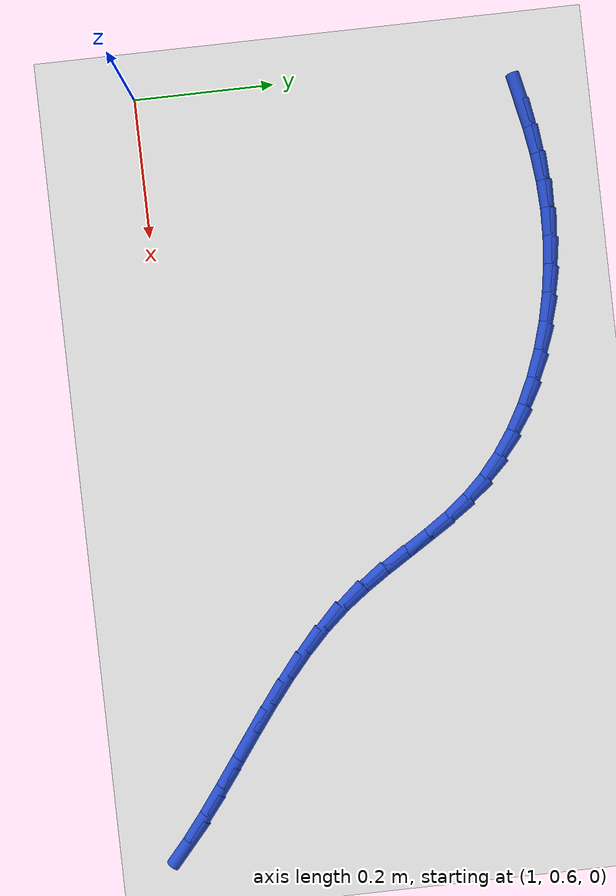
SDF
<sdf version="1.6">
 <world name="default">
  <model name="ground_plane">
   <static>1</static>
   <link name="link">
    <collision name="collision">
     <geometry><plane><normal>0 0 1</normal><size>100 100</size></plane></geometry>
     <surface><friction><ode><mu>100</mu><mu2>50</mu2></ode></friction></surface>
    </collision>
    <visual name="visual">
     <cast_shadows>0</cast_shadows>
     <geometry><plane><normal>0 0 1</normal><size>100 100</size></plane></geometry>
     <material>
      <script><uri>file://media/materials/scripts/gazebo.material</uri><name>Gazebo/WhiteGlow</name></script>
     </material>
    </visual>
   </link>
  </model>
  <model name="line">
   <link name="link_44">
    <pose>1.0646068850760408 1.150259368805527 0.01 0 1.57 0.20773346592808328</pose>
    <collision name="collision">
     <geometry><cylinder><radius>0.01</radius><length>0.08</length></cylinder></geometry>
    </collision>
    <visual name="visual">
     <material>
      <script><name>Gazebo/Blue</name><uri>file://media/materials/scripts/gazebo.material</uri></script>
     </material>
     <geometry><cylinder><radius>0.01</radius><length>0.08</length></cylinder></geometry>
    </visual>
   </link>
   <link name="link_45">
    <pose>1.1030458550985338 1.1583613074416304 0.01 0 1.57 0.16291315333399758</pose>
    <collision name="collision">
     <geometry><cylinder><radius>0.01</radius><length>0.08</length></cylinder></geometry>
    </collision>
    <visual name="visual">
     <material>
      <script><name>Gazebo/Blue</name><uri>file://media/materials/scripts/gazebo.material</uri></script>
     </material>
     <geometry><cylinder><radius>0.01</radius><length>0.08</length></cylinder></geometry>
    </visual>
   </link>
   <link name="link_46">
    <pose>1.1419332698020068 1.1647532277761146 0.01 0 1.57 0.10853883920037315</pose>
    <collision name="collision">
     <geometry><cylinder><radius>0.01</radius><length>0.08</length></cylinder></geometry>
    </collision>
    <visual name="visual">
     <material>
      <script><name>Gazebo/Blue</name><uri>file://media/materials/scripts/gazebo.material</uri></script>
     </material>
     <geometry><cylinder><radius>0.01</radius><length>0.08</length></cylinder></geometry>
    </visual>
   </link>
   <link name="link_47">
    <pose>1.1813703481232751 1.1690505709546015 0.01 0 1.57 0.04533581515027767</pose>
    <collision name="collision">
     <geometry><cylinder><radius>0.01</radius><length>0.08</length></cylinder></geometry>
    </collision>
    <visual name="visual">
     <material>
      <script><name>Gazebo/Blue</name><uri>file://media/materials/scripts/gazebo.material</uri></script>
     </material>
     <geometry><cylinder><radius>0.01</radius><length>0.08</length></cylinder></geometry>
    </visual>
   </link>
   <link name="link_48">
    <pose>1.2214577972305813 1.170869214282386 0.01 0 1.57 -0.022891678467195725</pose>
    <collision name="collision">
     <geometry><cylinder><radius>0.01</radius><length>0.08</length></cylinder></geometry>
    </collision>
    <visual name="visual">
     <material>
      <script><name>Gazebo/Blue</name><uri>file://media/materials/scripts/gazebo.material</uri></script>
     </material>
     <geometry><cylinder><radius>0.01</radius><length>0.08</length></cylinder></geometry>
    </visual>
   </link>
   <link name="link_49">
    <pose>1.262164713242165 1.1699372018434722 0.01 0 1.57 -0.08987571435881217</pose>
    <collision name="collision">
     <geometry><cylinder><radius>0.01</radius><length>0.08</length></cylinder></geometry>
    </collision>
    <visual name="visual">
     <material>
      <script><name>Gazebo/Blue</name><uri>file://media/materials/scripts/gazebo.material</uri></script>
     </material>
     <geometry><cylinder><radius>0.01</radius><length>0.08</length></cylinder></geometry>
    </visual>
   </link>
   <link name="link_50">
    <pose>1.3031542938465537 1.1662432825902787 0.01 0 1.57 -0.15596903619288768</pose>
    <collision name="collision">
     <geometry><cylinder><radius>0.01</radius><length>0.08</length></cylinder></geometry>
    </collision>
    <visual name="visual">
     <material>
      <script><name>Gazebo/Blue</name><uri>file://media/materials/scripts/gazebo.material</uri></script>
     </material>
     <geometry><cylinder><radius>0.01</radius><length>0.08</length></cylinder></geometry>
    </visual>
   </link>
   <link name="link_51">
    <pose>1.3440463779305294 1.1598131584295597 0.01 0 1.57 -0.22243005335612195</pose>
    <collision name="collision">
     <geometry><cylinder><radius>0.01</radius><length>0.08</length></cylinder></geometry>
    </collision>
    <visual name="visual">
     <material>
      <script><name>Gazebo/Blue</name><uri>file://media/materials/scripts/gazebo.material</uri></script>
     </material>
     <geometry><cylinder><radius>0.01</radius><length>0.08</length></cylinder></geometry>
    </visual>
   </link>
   <link name="link_52">
    <pose>1.3844608043808728 1.1506725312680683 0.01 0 1.57 -0.2904927583099985</pose>
    <collision name="collision">
     <geometry><cylinder><radius>0.01</radius><length>0.08</length></cylinder></geometry>
    </collision>
    <visual name="visual">
     <material>
      <script><name>Gazebo/Blue</name><uri>file://media/materials/scripts/gazebo.material</uri></script>
     </material>
     <geometry><cylinder><radius>0.01</radius><length>0.08</length></cylinder></geometry>
    </visual>
   </link>
   <link name="link_53">
    <pose>1.4240174120843647 1.1388471030125598 0.01 0 1.57 -0.36140017610113045</pose>
    <collision name="collision">
     <geometry><cylinder><radius>0.01</radius><length>0.08</length></cylinder></geometry>
    </collision>
    <visual name="visual">
     <material>
      <script><name>Gazebo/Blue</name><uri>file://media/materials/scripts/gazebo.material</uri></script>
     </material>
     <geometry><cylinder><radius>0.01</radius><length>0.08</length></cylinder></geometry>
    </visual>
   </link>
   <link name="link_54">
    <pose>1.4623360399277854 1.1243625755697872 0.01 0 1.57 -0.4364264576479031</pose>
    <collision name="collision">
     <geometry><cylinder><radius>0.01</radius><length>0.08</length></cylinder></geometry>
    </collision>
    <visual name="visual">
     <material>
      <script><name>Gazebo/Blue</name><uri>file://media/materials/scripts/gazebo.material</uri></script>
     </material>
     <geometry><cylinder><radius>0.01</radius><length>0.08</length></cylinder></geometry>
    </visual>
   </link>
   <link name="link_55">
    <pose>1.499036526797916 1.1072446508465044 0.01 0 1.57 -0.5168796228794665</pose>
    <collision name="collision">
     <geometry><cylinder><radius>0.01</radius><length>0.08</length></cylinder></geometry>
    </collision>
    <visual name="visual">
     <material>
      <script><name>Gazebo/Blue</name><uri>file://media/materials/scripts/gazebo.material</uri></script>
     </material>
     <geometry><cylinder><radius>0.01</radius><length>0.08</length></cylinder></geometry>
    </visual>
   </link>
   <link name="link_56">
    <pose>1.533738711581538 1.087519030749466 0.01 0 1.57 -0.604071956234662</pose>
    <collision name="collision">
     <geometry><cylinder><radius>0.01</radius><length>0.08</length></cylinder></geometry>
    </collision>
    <visual name="visual">
     <material>
      <script><name>Gazebo/Blue</name><uri>file://media/materials/scripts/gazebo.material</uri></script>
     </material>
     <geometry><cylinder><radius>0.01</radius><length>0.08</length></cylinder></geometry>
    </visual>
   </link>
   <link name="link_57">
    <pose>1.5660624331654307 1.0652114171854252 0.01 0 1.57 -0.6992390707674084</pose>
    <collision name="collision">
     <geometry><cylinder><radius>0.01</radius><length>0.08</length></cylinder></geometry>
    </collision>
    <visual name="visual">
     <material>
      <script><name>Gazebo/Blue</name><uri>file://media/materials/scripts/gazebo.material</uri></script>
     </material>
     <geometry><cylinder><radius>0.01</radius><length>0.08</length></cylinder></geometry>
    </visual>
   </link>
   <link name="link_58">
    <pose>1.5956275304363765 1.040347512061137 0.01 0 1.57 -0.8032128525421833</pose>
    <collision name="collision">
     <geometry><cylinder><radius>0.01</radius><length>0.08</length></cylinder></geometry>
    </collision>
    <visual name="visual">
     <material>
      <script><name>Gazebo/Blue</name><uri>file://media/materials/scripts/gazebo.material</uri></script>
     </material>
     <geometry><cylinder><radius>0.01</radius><length>0.08</length></cylinder></geometry>
    </visual>
   </link>
   <link name="link_59">
    <pose>1.622060587713493 1.0129554760281962 0.01 0 1.57 -0.9026111284371222</pose>
    <collision name="collision">
     <geometry><cylinder><radius>0.01</radius><length>0.08</length></cylinder></geometry>
    </collision>
    <visual name="visual">
     <material>
      <script><name>Gazebo/Blue</name><uri>file://media/materials/scripts/gazebo.material</uri></script>
     </material>
     <geometry><cylinder><radius>0.01</radius><length>0.08</length></cylinder></geometry>
    </visual>
   </link>
   <link name="link_60">
    <pose>1.6455056166699857 0.9832520746747376 0.01 0 1.57 -0.9721071338292425</pose>
    <collision name="collision">
     <geometry><cylinder><radius>0.01</radius><length>0.08</length></cylinder></geometry>
    </collision>
    <visual name="visual">
     <material>
      <script><name>Gazebo/Blue</name><uri>file://media/materials/scripts/gazebo.material</uri></script>
     </material>
     <geometry><cylinder><radius>0.01</radius><length>0.08</length></cylinder></geometry>
    </visual>
   </link>
   <link name="link_61">
    <pose>1.6669811878000569 0.951772854785194 0.01 0 1.57 -1.0082771171789278</pose>
    <collision name="collision">
     <geometry><cylinder><radius>0.01</radius><length>0.08</length></cylinder></geometry>
    </collision>
    <visual name="visual">
     <material>
      <script><name>Gazebo/Blue</name><uri>file://media/materials/scripts/gazebo.material</uri></script>
     </material>
     <geometry><cylinder><radius>0.01</radius><length>0.08</length></cylinder></geometry>
    </visual>
   </link>
   <link name="link_62">
    <pose>1.6875902707785475 0.919084127080195 0.01 0 1.57 -1.0119141946341264</pose>
    <collision name="collision">
     <geometry><cylinder><radius>0.01</radius><length>0.08</length></cylinder></geometry>
    </collision>
    <visual name="visual">
     <material>
      <script><name>Gazebo/Blue</name><uri>file://media/materials/scripts/gazebo.material</uri></script>
     </material>
     <geometry><cylinder><radius>0.01</radius><length>0.08</length></cylinder></geometry>
    </visual>
   </link>
   <link name="link_63">
    <pose>1.7084358352802989 0.8857522022803708 0.01 0 1.57 -0.9846096387332908</pose>
    <collision name="collision">
     <geometry><cylinder><radius>0.01</radius><length>0.08</length></cylinder></geometry>
    </collision>
    <visual name="visual">
     <material>
      <script><name>Gazebo/Blue</name><uri>file://media/materials/scripts/gazebo.material</uri></script>
     </material>
     <geometry><cylinder><radius>0.01</radius><length>0.08</length></cylinder></geometry>
    </visual>
   </link>
   <link name="link_64">
    <pose>1.73062085098015 0.8523433911063516 0.01 0 1.57 -0.9285036935971838</pose>
    <collision name="collision">
     <geometry><cylinder><radius>0.01</radius><length>0.08</length></cylinder></geometry>
    </collision>
    <visual name="visual">
     <material>
      <script><name>Gazebo/Blue</name><uri>file://media/materials/scripts/gazebo.material</uri></script>
     </material>
     <geometry><cylinder><radius>0.01</radius><length>0.08</length></cylinder></geometry>
    </visual>
   </link>
   <link name="link_65">
    <pose>1.7552482875529432 0.8194240042787682 0.01 0 1.57 -0.848129932686067</pose>
    <collision name="collision">
     <geometry><cylinder><radius>0.01</radius><length>0.08</length></cylinder></geometry>
    </collision>
    <visual name="visual">
     <material>
      <script><name>Gazebo/Blue</name><uri>file://media/materials/scripts/gazebo.material</uri></script>
     </material>
     <geometry><cylinder><radius>0.01</radius><length>0.08</length></cylinder></geometry>
    </visual>
   </link>
   <link name="link_66">
    <pose>1.7833644824527948 0.7875388749199437 0.01 0 1.57 -0.769747486345621</pose>
    <collision name="collision">
     <geometry><cylinder><radius>0.01</radius><length>0.08</length></cylinder></geometry>
    </collision>
    <visual name="visual">
     <material>
      <script><name>Gazebo/Blue</name><uri>file://media/materials/scripts/gazebo.material</uri></script>
     </material>
     <geometry><cylinder><radius>0.01</radius><length>0.08</length></cylinder></geometry>
    </visual>
   </link>
   <link name="link_67">
    <pose>1.8150228444236751 0.7568562709440844 0.01 0 1.57 -0.7109773756098754</pose>
    <collision name="collision">
     <geometry><cylinder><radius>0.01</radius><length>0.08</length></cylinder></geometry>
    </collision>
    <visual name="visual">
     <material>
      <script><name>Gazebo/Blue</name><uri>file://media/materials/scripts/gazebo.material</uri></script>
     </material>
     <geometry><cylinder><radius>0.01</radius><length>0.08</length></cylinder></geometry>
    </visual>
   </link>
   <link name="link_68">
    <pose>1.8494303960761866 0.7272234708859927 0.01 0 1.57 -0.6692913121242292</pose>
    <collision name="collision">
     <geometry><cylinder><radius>0.01</radius><length>0.08</length></cylinder></geometry>
    </collision>
    <visual name="visual">
     <material>
      <script><name>Gazebo/Blue</name><uri>file://media/materials/scripts/gazebo.material</uri></script>
     </material>
     <geometry><cylinder><radius>0.01</radius><length>0.08</length></cylinder></geometry>
    </visual>
   </link>
   <link name="link_69">
    <pose>1.8857670707859722 0.698477479770101 0.01 0 1.57 -0.6424385245916124</pose>
    <collision name="collision">
     <geometry><cylinder><radius>0.01</radius><length>0.08</length></cylinder></geometry>
    </collision>
    <visual name="visual">
     <material>
      <script><name>Gazebo/Blue</name><uri>file://media/materials/scripts/gazebo.material</uri></script>
     </material>
     <geometry><cylinder><radius>0.01</radius><length>0.08</length></cylinder></geometry>
    </visual>
   </link>
   <link name="link_70">
    <pose>1.9232128019286698 0.6704553026208415 0.01 0 1.57 -0.6291069048368725</pose>
    <collision name="collision">
     <geometry><cylinder><radius>0.01</radius><length>0.08</length></cylinder></geometry>
    </collision>
    <visual name="visual">
     <material>
      <script><name>Gazebo/Blue</name><uri>file://media/materials/scripts/gazebo.material</uri></script>
     </material>
     <geometry><cylinder><radius>0.01</radius><length>0.08</length></cylinder></geometry>
    </visual>
   </link>
   <link name="link_71">
    <pose>1.960947522879923 0.6429939444626462 0.01 0 1.57 -0.6289077089782888</pose>
    <collision name="collision">
     <geometry><cylinder><radius>0.01</radius><length>0.08</length></cylinder></geometry>
    </collision>
    <visual name="visual">
     <material>
      <script><name>Gazebo/Blue</name><uri>file://media/materials/scripts/gazebo.material</uri></script>
     </material>
     <geometry><cylinder><radius>0.01</radius><length>0.08</length></cylinder></geometry>
    </visual>
   </link>
   <link name="link_72">
    <pose>1.99815116701537 0.6159304103199474 0.01 0 1.57 -0.6424172062147037</pose>
    <collision name="collision">
     <geometry><cylinder><radius>0.01</radius><length>0.08</length></cylinder></geometry>
    </collision>
    <visual name="visual">
     <material>
      <script><name>Gazebo/Blue</name><uri>file://media/materials/scripts/gazebo.material</uri></script>
     </material>
     <geometry><cylinder><radius>0.01</radius><length>0.08</length></cylinder></geometry>
    </visual>
   </link>
   <link name="link_73">
    <pose>2.034003667710653 0.5891017052171773 0.01 0 1.57 -0.6713252278008757</pose>
    <collision name="collision">
     <geometry><cylinder><radius>0.01</radius><length>0.08</length></cylinder></geometry>
    </collision>
    <visual name="visual">
     <material>
      <script><name>Gazebo/Blue</name><uri>file://media/materials/scripts/gazebo.material</uri></script>
     </material>
     <geometry><cylinder><radius>0.01</radius><length>0.08</length></cylinder></geometry>
    </visual>
   </link>
   <link name="link_74">
    <pose>2.067684958341413 0.5623448341787676 0.01 0 1.57 -0.7187242404198007</pose>
    <collision name="collision">
     <geometry><cylinder><radius>0.01</radius><length>0.08</length></cylinder></geometry>
    </collision>
    <visual name="visual">
     <material>
      <script><name>Gazebo/Blue</name><uri>file://media/materials/scripts/gazebo.material</uri></script>
     </material>
     <geometry><cylinder><radius>0.01</radius><length>0.08</length></cylinder></geometry>
    </visual>
   </link>
  </model>
 </world>
</sdf>
